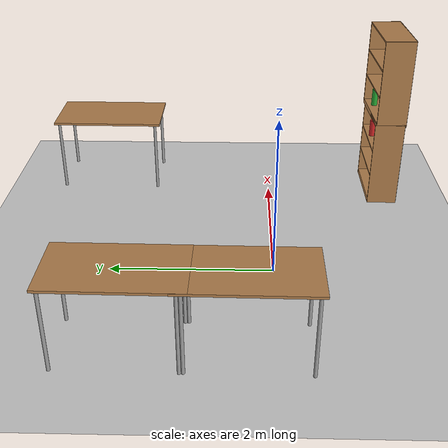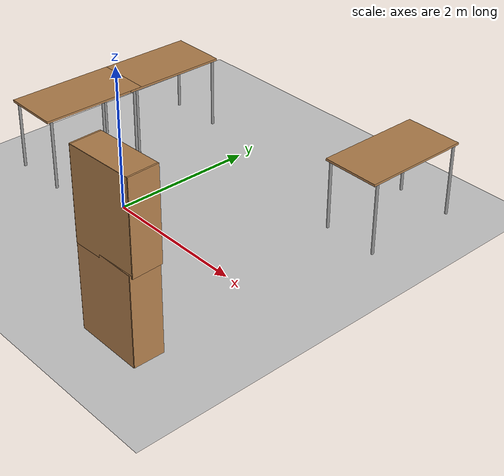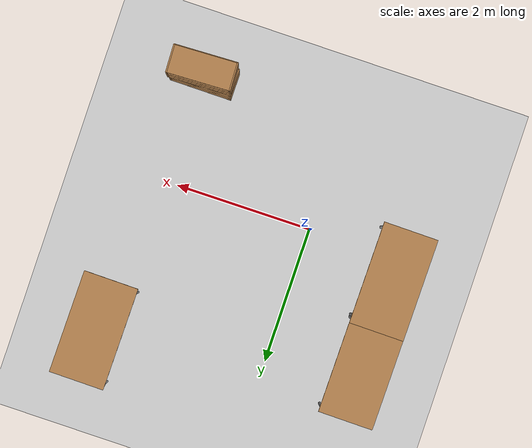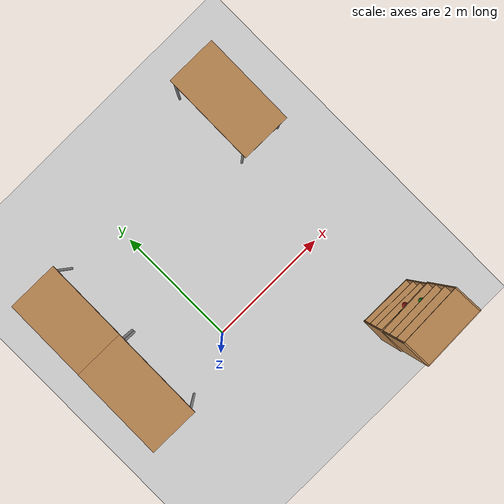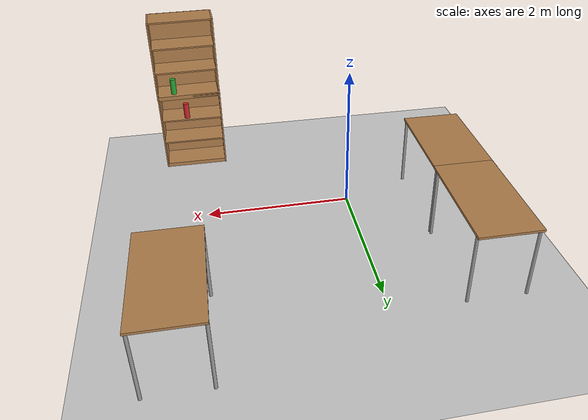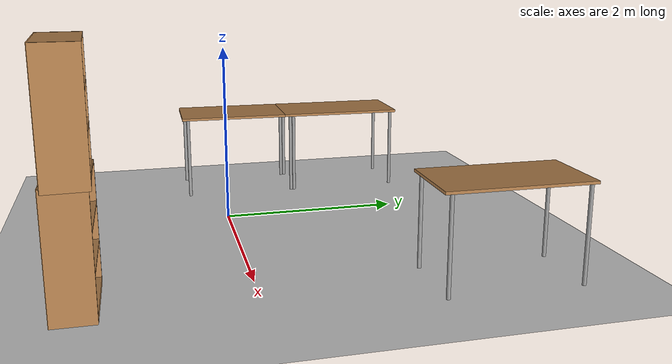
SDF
<sdf version="1.6">
 <world name="default">
  <model name="ground_plane">
   <static>1</static>
   <link name="link">
    <collision name="collision">
     <geometry><plane><normal>0 0 1</normal><size>100 100</size></plane></geometry>
     <surface><friction><ode><mu>100</mu><mu2>50</mu2></ode></friction></surface>
    </collision>
    <visual name="visual">
     <cast_shadows>0</cast_shadows>
     <geometry><plane><normal>0 0 1</normal><size>100 100</size></plane></geometry>
     <material>
      <script><uri>file://media/materials/scripts/gazebo.material</uri><name>Gazebo/Grey</name></script>
     </material>
    </visual>
   </link>
  </model>
  <model name="table">
   <static>1</static>
   <link name="link">
    <collision name="surface">
     <pose>0 0 1 0 -0 0</pose>
     <geometry><box><size>1.5 0.8 0.03</size></box></geometry>
     <surface><friction><ode><mu>0.6</mu><mu2>0.6</mu2></ode></friction></surface>
    </collision>
    <visual name="visual1">
     <pose>0 0 1 0 -0 0</pose>
     <geometry><box><size>1.5 0.8 0.03</size></box></geometry>
     <material>
      <script><uri>file://media/materials/scripts/gazebo.material</uri><name>Gazebo/Wood</name></script>
     </material>
    </visual>
    <collision name="front_left_leg">
     <pose>0.68 0.38 0.5 0 -0 0</pose>
     <geometry><cylinder><radius>0.02</radius><length>1</length></cylinder></geometry>
    </collision>
    <visual name="front_left_leg">
     <pose>0.68 0.38 0.5 0 -0 0</pose>
     <geometry><cylinder><radius>0.02</radius><length>1</length></cylinder></geometry>
     <material>
      <script><uri>file://media/materials/scripts/gazebo.material</uri><name>Gazebo/Grey</name></script>
     </material>
    </visual>
    <collision name="front_right_leg">
     <pose>0.68 -0.38 0.5 0 -0 0</pose>
     <geometry><cylinder><radius>0.02</radius><length>1</length></cylinder></geometry>
    </collision>
    <visual name="front_right_leg">
     <pose>0.68 -0.38 0.5 0 -0 0</pose>
     <geometry><cylinder><radius>0.02</radius><length>1</length></cylinder></geometry>
     <material>
      <script><uri>file://media/materials/scripts/gazebo.material</uri><name>Gazebo/Grey</name></script>
     </material>
    </visual>
    <collision name="back_right_leg">
     <pose>-0.68 -0.38 0.5 0 -0 0</pose>
     <geometry><cylinder><radius>0.02</radius><length>1</length></cylinder></geometry>
    </collision>
    <visual name="back_right_leg">
     <pose>-0.68 -0.38 0.5 0 -0 0</pose>
     <geometry><cylinder><radius>0.02</radius><length>1</length></cylinder></geometry>
     <material>
      <script><uri>file://media/materials/scripts/gazebo.material</uri><name>Gazebo/Grey</name></script>
     </material>
    </visual>
    <collision name="back_left_leg">
     <pose>-0.68 0.38 0.5 0 -0 0</pose>
     <geometry><cylinder><radius>0.02</radius><length>1</length></cylinder></geometry>
    </collision>
    <visual name="back_left_leg">
     <pose>-0.68 0.38 0.5 0 -0 0</pose>
     <geometry><cylinder><radius>0.02</radius><length>1</length></cylinder></geometry>
     <material>
      <script><uri>file://media/materials/scripts/gazebo.material</uri><name>Gazebo/Grey</name></script>
     </material>
    </visual>
   </link>
   <pose>-1.33827 0.322435 0 0 0 -1.58073</pose>
  </model>
  <model name="table_clone">
   <static>1</static>
   <link name="link">
    <collision name="surface">
     <pose>0 0 1 0 -0 0</pose>
     <geometry><box><size>1.5 0.8 0.03</size></box></geometry>
     <surface><friction><ode><mu>0.6</mu><mu2>0.6</mu2></ode></friction></surface>
    </collision>
    <visual name="visual1">
     <pose>0 0 1 0 -0 0</pose>
     <geometry><box><size>1.5 0.8 0.03</size></box></geometry>
     <material>
      <script><uri>file://media/materials/scripts/gazebo.material</uri><name>Gazebo/Wood</name></script>
     </material>
    </visual>
    <collision name="front_left_leg">
     <pose>0.68 0.38 0.5 0 -0 0</pose>
     <geometry><cylinder><radius>0.02</radius><length>1</length></cylinder></geometry>
    </collision>
    <visual name="front_left_leg">
     <pose>0.68 0.38 0.5 0 -0 0</pose>
     <geometry><cylinder><radius>0.02</radius><length>1</length></cylinder></geometry>
     <material>
      <script><uri>file://media/materials/scripts/gazebo.material</uri><name>Gazebo/Grey</name></script>
     </material>
    </visual>
    <collision name="front_right_leg">
     <pose>0.68 -0.38 0.5 0 -0 0</pose>
     <geometry><cylinder><radius>0.02</radius><length>1</length></cylinder></geometry>
    </collision>
    <visual name="front_right_leg">
     <pose>0.68 -0.38 0.5 0 -0 0</pose>
     <geometry><cylinder><radius>0.02</radius><length>1</length></cylinder></geometry>
     <material>
      <script><uri>file://media/materials/scripts/gazebo.material</uri><name>Gazebo/Grey</name></script>
     </material>
    </visual>
    <collision name="back_right_leg">
     <pose>-0.68 -0.38 0.5 0 -0 0</pose>
     <geometry><cylinder><radius>0.02</radius><length>1</length></cylinder></geometry>
    </collision>
    <visual name="back_right_leg">
     <pose>-0.68 -0.38 0.5 0 -0 0</pose>
     <geometry><cylinder><radius>0.02</radius><length>1</length></cylinder></geometry>
     <material>
      <script><uri>file://media/materials/scripts/gazebo.material</uri><name>Gazebo/Grey</name></script>
     </material>
    </visual>
    <collision name="back_left_leg">
     <pose>-0.68 0.38 0.5 0 -0 0</pose>
     <geometry><cylinder><radius>0.02</radius><length>1</length></cylinder></geometry>
    </collision>
    <visual name="back_left_leg">
     <pose>-0.68 0.38 0.5 0 -0 0</pose>
     <geometry><cylinder><radius>0.02</radius><length>1</length></cylinder></geometry>
     <material>
      <script><uri>file://media/materials/scripts/gazebo.material</uri><name>Gazebo/Grey</name></script>
     </material>
    </visual>
   </link>
   <pose>-1.32325 1.64119 0 0 0 -1.58073</pose>
  </model>
  <model name="table_clone_2">
   <static>1</static>
   <link name="link">
    <collision name="surface">
     <pose>0 0 1 0 -0 0</pose>
     <geometry><box><size>1.5 0.8 0.03</size></box></geometry>
     <surface><friction><ode><mu>0.6</mu><mu2>0.6</mu2></ode></friction></surface>
    </collision>
    <visual name="visual1">
     <pose>0 0 1 0 -0 0</pose>
     <geometry><box><size>1.5 0.8 0.03</size></box></geometry>
     <material>
      <script><uri>file://media/materials/scripts/gazebo.material</uri><name>Gazebo/Wood</name></script>
     </material>
    </visual>
    <collision name="front_left_leg">
     <pose>0.68 0.38 0.5 0 -0 0</pose>
     <geometry><cylinder><radius>0.02</radius><length>1</length></cylinder></geometry>
    </collision>
    <visual name="front_left_leg">
     <pose>0.68 0.38 0.5 0 -0 0</pose>
     <geometry><cylinder><radius>0.02</radius><length>1</length></cylinder></geometry>
     <material>
      <script><uri>file://media/materials/scripts/gazebo.material</uri><name>Gazebo/Grey</name></script>
     </material>
    </visual>
    <collision name="front_right_leg">
     <pose>0.68 -0.38 0.5 0 -0 0</pose>
     <geometry><cylinder><radius>0.02</radius><length>1</length></cylinder></geometry>
    </collision>
    <visual name="front_right_leg">
     <pose>0.68 -0.38 0.5 0 -0 0</pose>
     <geometry><cylinder><radius>0.02</radius><length>1</length></cylinder></geometry>
     <material>
      <script><uri>file://media/materials/scripts/gazebo.material</uri><name>Gazebo/Grey</name></script>
     </material>
    </visual>
    <collision name="back_right_leg">
     <pose>-0.68 -0.38 0.5 0 -0 0</pose>
     <geometry><cylinder><radius>0.02</radius><length>1</length></cylinder></geometry>
    </collision>
    <visual name="back_right_leg">
     <pose>-0.68 -0.38 0.5 0 -0 0</pose>
     <geometry><cylinder><radius>0.02</radius><length>1</length></cylinder></geometry>
     <material>
      <script><uri>file://media/materials/scripts/gazebo.material</uri><name>Gazebo/Grey</name></script>
     </material>
    </visual>
    <collision name="back_left_leg">
     <pose>-0.68 0.38 0.5 0 -0 0</pose>
     <geometry><cylinder><radius>0.02</radius><length>1</length></cylinder></geometry>
    </collision>
    <visual name="back_left_leg">
     <pose>-0.68 0.38 0.5 0 -0 0</pose>
     <geometry><cylinder><radius>0.02</radius><length>1</length></cylinder></geometry>
     <material>
      <script><uri>file://media/materials/scripts/gazebo.material</uri><name>Gazebo/Grey</name></script>
     </material>
    </visual>
   </link>
   <pose>2.43494 2.31407 0 0 0 -1.58073</pose>
  </model>
  <model name="bookshelf">
   <static>1</static>
   <link name="link">
    <inertial><mass>1</mass></inertial>
    <collision name="back">
     <pose>0 0.005 0.6 0 -0 0</pose>
     <geometry><box><size>0.9 0.01 1.2</size></box></geometry>
    </collision>
    <visual name="visual1">
     <pose>0 0.005 0.6 0 -0 0</pose>
     <geometry><box><size>0.9 0.01 1.2</size></box></geometry>
     <material>
      <script><uri>file://media/materials/scripts/gazebo.material</uri><name>Gazebo/Wood</name></script>
     </material>
    </visual>
    <collision name="left_side">
     <pose>0.45 -0.195 0.6 0 -0 0</pose>
     <geometry><box><size>0.02 0.4 1.2</size></box></geometry>
    </collision>
    <visual name="visual2">
     <pose>0.45 -0.195 0.6 0 -0 0</pose>
     <geometry><box><size>0.02 0.4 1.2</size></box></geometry>
     <material>
      <script><uri>file://media/materials/scripts/gazebo.material</uri><name>Gazebo/Wood</name></script>
     </material>
    </visual>
    <collision name="right_side">
     <pose>-0.45 -0.195 0.6 0 -0 0</pose>
     <geometry><box><size>0.02 0.4 1.2</size></box></geometry>
    </collision>
    <visual name="visual3">
     <pose>-0.45 -0.195 0.6 0 -0 0</pose>
     <geometry><box><size>0.02 0.4 1.2</size></box></geometry>
     <material>
      <script><uri>file://media/materials/scripts/gazebo.material</uri><name>Gazebo/Wood</name></script>
     </material>
    </visual>
    <collision name="bottom">
     <pose>0 -0.195 0.03 0 -0 0</pose>
     <geometry><box><size>0.88 0.4 0.06</size></box></geometry>
    </collision>
    <visual name="visual4">
     <pose>0 -0.195 0.03 0 -0 0</pose>
     <geometry><box><size>0.88 0.4 0.06</size></box></geometry>
     <material>
      <script><uri>file://media/materials/scripts/gazebo.material</uri><name>Gazebo/Wood</name></script>
     </material>
    </visual>
    <collision name="top">
     <pose>0 -0.195 1.19 0 -0 0</pose>
     <geometry><box><size>0.88 0.4 0.02</size></box></geometry>
    </collision>
    <visual name="visual5">
     <pose>0 -0.195 1.19 0 -0 0</pose>
     <geometry><box><size>0.88 0.4 0.02</size></box></geometry>
     <material>
      <script><uri>file://media/materials/scripts/gazebo.material</uri><name>Gazebo/Wood</name></script>
     </material>
    </visual>
    <collision name="low_shelf">
     <pose>0 -0.195 0.43 0 -0 0</pose>
     <geometry><box><size>0.88 0.4 0.02</size></box></geometry>
    </collision>
    <visual name="visual6">
     <pose>0 -0.195 0.43 0 -0 0</pose>
     <geometry><box><size>0.88 0.4 0.02</size></box></geometry>
     <material>
      <script><uri>file://media/materials/scripts/gazebo.material</uri><name>Gazebo/Wood</name></script>
     </material>
    </visual>
    <collision name="high_shelf">
     <pose>0 -0.195 0.8 0 -0 0</pose>
     <geometry><box><size>0.88 0.4 0.02</size></box></geometry>
    </collision>
    <visual name="visual7">
     <pose>0 -0.195 0.8 0 -0 0</pose>
     <geometry><box><size>0.88 0.4 0.02</size></box></geometry>
     <material>
      <script><uri>file://media/materials/scripts/gazebo.material</uri><name>Gazebo/Wood</name></script>
     </material>
    </visual>
   </link>
   <pose>2.11636 -1.79503 -0 0 -0 3.13694</pose>
  </model>
  <model name="bookshelf_0">
   <static>1</static>
   <link name="link">
    <inertial><mass>1</mass></inertial>
    <collision name="back">
     <pose>0 0.005 0.6 0 -0 0</pose>
     <geometry><box><size>0.9 0.01 1.2</size></box></geometry>
    </collision>
    <visual name="visual1">
     <pose>0 0.005 0.6 0 -0 0</pose>
     <geometry><box><size>0.9 0.01 1.2</size></box></geometry>
     <material>
      <script><uri>file://media/materials/scripts/gazebo.material</uri><name>Gazebo/Wood</name></script>
     </material>
    </visual>
    <collision name="left_side">
     <pose>0.45 -0.195 0.6 0 -0 0</pose>
     <geometry><box><size>0.02 0.4 1.2</size></box></geometry>
    </collision>
    <visual name="visual2">
     <pose>0.45 -0.195 0.6 0 -0 0</pose>
     <geometry><box><size>0.02 0.4 1.2</size></box></geometry>
     <material>
      <script><uri>file://media/materials/scripts/gazebo.material</uri><name>Gazebo/Wood</name></script>
     </material>
    </visual>
    <collision name="right_side">
     <pose>-0.45 -0.195 0.6 0 -0 0</pose>
     <geometry><box><size>0.02 0.4 1.2</size></box></geometry>
    </collision>
    <visual name="visual3">
     <pose>-0.45 -0.195 0.6 0 -0 0</pose>
     <geometry><box><size>0.02 0.4 1.2</size></box></geometry>
     <material>
      <script><uri>file://media/materials/scripts/gazebo.material</uri><name>Gazebo/Wood</name></script>
     </material>
    </visual>
    <collision name="bottom">
     <pose>0 -0.195 0.03 0 -0 0</pose>
     <geometry><box><size>0.88 0.4 0.06</size></box></geometry>
    </collision>
    <visual name="visual4">
     <pose>0 -0.195 0.03 0 -0 0</pose>
     <geometry><box><size>0.88 0.4 0.06</size></box></geometry>
     <material>
      <script><uri>file://media/materials/scripts/gazebo.material</uri><name>Gazebo/Wood</name></script>
     </material>
    </visual>
    <collision name="top">
     <pose>0 -0.195 1.19 0 -0 0</pose>
     <geometry><box><size>0.88 0.4 0.02</size></box></geometry>
    </collision>
    <visual name="visual5">
     <pose>0 -0.195 1.19 0 -0 0</pose>
     <geometry><box><size>0.88 0.4 0.02</size></box></geometry>
     <material>
      <script><uri>file://media/materials/scripts/gazebo.material</uri><name>Gazebo/Wood</name></script>
     </material>
    </visual>
    <collision name="low_shelf">
     <pose>0 -0.195 0.43 0 -0 0</pose>
     <geometry><box><size>0.88 0.4 0.02</size></box></geometry>
    </collision>
    <visual name="visual6">
     <pose>0 -0.195 0.43 0 -0 0</pose>
     <geometry><box><size>0.88 0.4 0.02</size></box></geometry>
     <material>
      <script><uri>file://media/materials/scripts/gazebo.material</uri><name>Gazebo/Wood</name></script>
     </material>
    </visual>
    <collision name="high_shelf">
     <pose>0 -0.195 0.8 0 -0 0</pose>
     <geometry><box><size>0.88 0.4 0.02</size></box></geometry>
    </collision>
    <visual name="visual7">
     <pose>0 -0.195 0.8 0 -0 0</pose>
     <geometry><box><size>0.88 0.4 0.02</size></box></geometry>
     <material>
      <script><uri>file://media/materials/scripts/gazebo.material</uri><name>Gazebo/Wood</name></script>
     </material>
    </visual>
   </link>
   <pose>2.13662 -1.79214 1.15909 0 0 -3.10402</pose>
  </model>
  <model name="pringles_red">
   <pose>2.18355 -1.47083 0.927291 2.2e-05 5.5e-05 0</pose>
   <link name="link">
    <inertial>
     <mass>0.2</mass>
     <inertia>
      <ixx>0.000908</ixx>
      <ixy>0</ixy>
      <ixz>0</ixz>
      <iyy>0.000908</iyy>
      <iyz>0</iyz>
      <izz>0.0002025</izz>
     </inertia>
    </inertial>
    <collision name="collision">
     <geometry><cylinder><radius>0.04</radius><length>0.235</length></cylinder></geometry>
     <surface>
      <contact><ode><min_depth>0.005</min_depth></ode></contact>
      <friction><ode><mu>0.9</mu><mu2>0.9</mu2></ode></friction>
     </surface>
    </collision>
    <visual name="visual">
     <pose>0 0 0 3.1415 -0 0</pose>
     <geometry><cylinder><radius>0.04</radius><length>0.235</length></cylinder></geometry>
     <material>
      <script>
       <uri>model://pringles_red/material/scripts</uri>
       <uri>model://pringles_red/material/textures</uri>
       <name>Custom/PringlesRed</name>
      </script>
     </material>
    </visual>
   </link>
  </model>
  <model name="pringles_green">
   <pose>2.3331 -1.48758 1.33609 2.1e-05 5.1e-05 0</pose>
   <link name="link">
    <inertial>
     <mass>0.2</mass>
     <inertia>
      <ixx>0.000908</ixx>
      <ixy>0</ixy>
      <ixz>0</ixz>
      <iyy>0.000908</iyy>
      <iyz>0</iyz>
      <izz>0.0002025</izz>
     </inertia>
    </inertial>
    <collision name="collision">
     <geometry><cylinder><radius>0.04</radius><length>0.235</length></cylinder></geometry>
     <surface>
      <contact><ode><min_depth>0.005</min_depth></ode></contact>
      <friction><ode><mu>0.9</mu><mu2>0.9</mu2></ode></friction>
     </surface>
    </collision>
    <visual name="visual">
     <geometry><cylinder><radius>0.04</radius><length>0.235</length></cylinder></geometry>
     <material>
      <script>
       <uri>model://pringles_green/material/scripts</uri>
       <uri>model://pringles_green/material/textures</uri>
       <name>Custom/PringlesGreen</name>
      </script>
     </material>
    </visual>
   </link>
  </model>
 </world>
</sdf>
